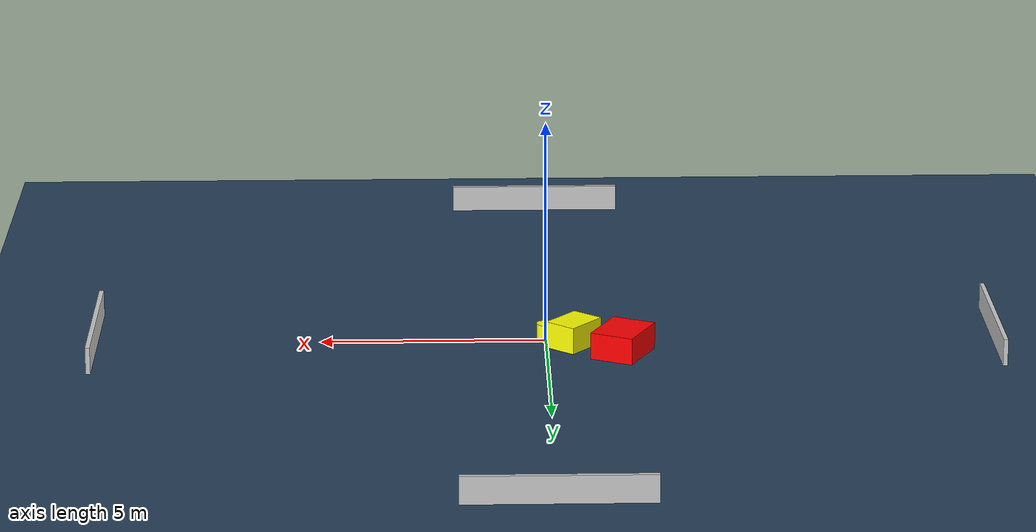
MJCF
<?xml version="1.0" ?>
<mujoco model="generated_environment">
  <option timestep="0.01" integrator="RK4" cone="elliptic"/>
  <default>
    <geom density="1"/>
  </default>
  <asset>
    <texture builtin="gradient" height="3072" name="skybox" rgb1="0.3 0.5 0.7" rgb2="0 0 0" type="skybox" width="512"/>
    <texture builtin="checker" height="300" name="groundplane" rgb1="0.2 0.3 0.4" rgb2="0.1 0.2 0.3" type="2d" width="300"/>
    <material name="groundplane" reflectance="0.2" texrepeat="5 5" texture="groundplane"/>
  </asset>
  <worldbody>
    <light dir="0 0 -1" directional="true" pos="0 0 1.5"/>
    <geom condim="3" friction="0.5 0.005 0.001" material="groundplane" name="floor" pos="0 0 0" size="0 0 0.05" type="plane"/>
    <body name="walls">
      <geom name="wall_1" condim="4" pos="-10.0 0.0 0.3" rgba="0.800000011920929 0.800000011920929 0.800000011920929 1.0" size="0.05 2.0 0.3" type="box"/>
      <geom name="wall_2" condim="4" pos="10.0 0.0 0.3" rgba="0.800000011920929 0.800000011920929 0.800000011920929 1.0" size="0.05 2.0 0.3" type="box"/>
      <geom name="wall_3" condim="4" pos="0.0 -10.0 0.3" rgba="0.800000011920929 0.800000011920929 0.800000011920929 1.0" size="2.0 0.05 0.3" type="box"/>
      <geom name="wall_4" condim="4" pos="0.0 10.0 0.3" rgba="0.800000011920929 0.800000011920929 0.800000011920929 1.0" size="2.0 0.05 0.3" type="box"/>
    </body>
    <body name="robot">
      <joint name="joint_x" type="slide" pos="0 0 0" axis="1 0 0"/>
      <joint name="joint_y" type="slide" pos="0 0 0" axis="0 1 0"/>
      <geom name="robot" type="cylinder" pos="0.0 0.0 0.2" size="0.2 0.2 0.0" mass="5.0" friction="1.0 0.005 0.0001" condim="4" rgba="1.0 1.0 0.0 1.0"/>
    </body>
    <body name="obstacle_1_movable">
      <geom name="obstacle_1_movable" condim="4" pos="-0.6155975576683433 0.36366170877331855 0.3" euler="0 0 139.78726074008878" friction="0.0 0.005 0.001" rgba="1.0 1.0 0.0 1.0" size="0.3758117972255607 0.4977857673370161 0.3" type="box" mass="0.1"/>
      <joint type="free"/>
    </body>
    <body name="obstacle_2_static">
      <geom name="obstacle_2_static" condim="4" pos="-1.6756804387577722 0.9544556497461814 0.3" euler="0 0 243.56072714333195" friction="0.0 0.005 0.001" rgba="1.0 0.0 0.0 1.0" size="0.6294952994709735 0.4959975846309944 0.3" type="box"/>
    </body>
  </worldbody>
  <actuator>
    <motor name="actuator_x" joint="joint_x" gear="1" ctrlrange="-1 1"/>
    <motor name="actuator_y" joint="joint_y" gear="1" ctrlrange="-1 1"/>
  </actuator>
</mujoco>
